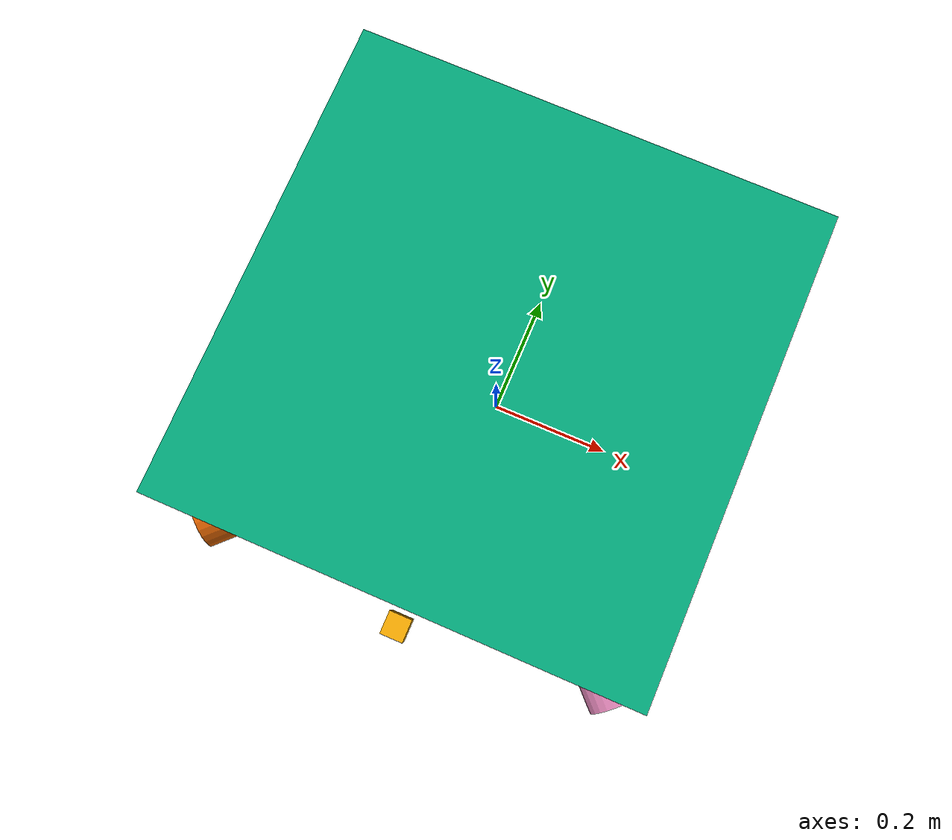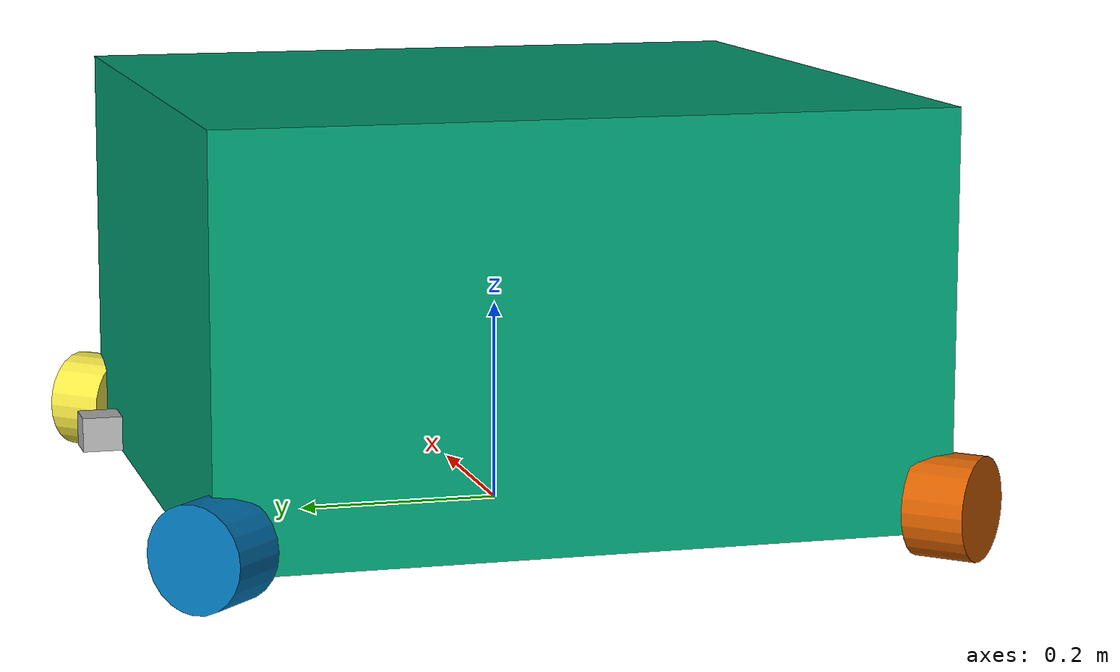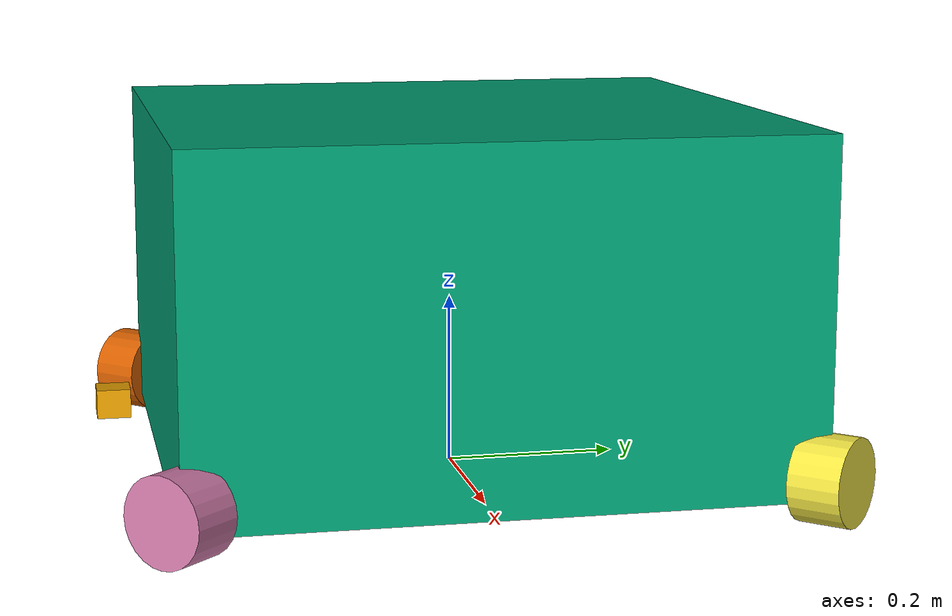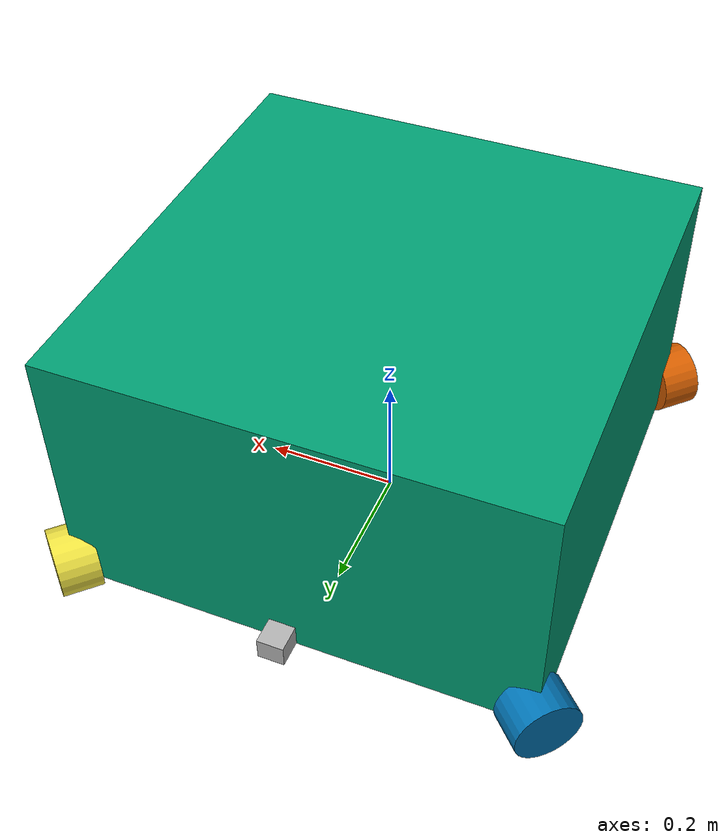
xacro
<?xml version="1.0"?>
<robot name="exr1" xmlns:xacro="http://ros.org/wiki/xacro">
  <xacro:property name="wheel_separation" value="0.35" />
  <xacro:property name="wheel_radius" value="0.05" />
  <xacro:property name="body_height" value="0.025" />

  <xacro:include filename="$(find exr1_description)/urdf/utils.xacro" />
  <xacro:include filename="$(find exr1_description)/urdf/wheel.urdf.xacro" />
  <xacro:include filename="$(find exr1_description)/urdf/ld06_lidar.urdf.xacro" />

  <link name="base_footprint" />

  <joint name="base_link_joint" type="fixed">
    <parent link="base_footprint" />
    <child link="base_link" />
    <origin xyz="0 0 0" rpy="0 0 0" />
  </joint>
  <link name="base_link" />

  <joint name="body_joint" type="fixed">
    <parent link="base_link" />
    <child link="body_link" />
    <origin xyz="0 0 ${0.2 + body_height}" rpy="0 0 0" />
  </joint>
  <link name="body_link">
    <xacro:inertial_box mass="28" x="0.7" y="0.7" z="0.4">
      <origin xyz="0 0 0" />
    </xacro:inertial_box>
    <collision>
      <geometry>
        <box size="0.7 0.7 0.4" />
      </geometry>
    </collision>
    <visual>
      <geometry>
        <box size="0.7 0.7 0.4" />
      </geometry>
    </visual>
  </link>

  <xacro:wheel name="front_left" radius="${wheel_radius}">
    <origin xyz="${wheel_separation} ${wheel_separation} ${wheel_radius}"
      rpy="${-pi/2} 0 ${1*pi/4+pi/2}" />
  </xacro:wheel>

  <xacro:wheel name="rear_left" radius="${wheel_radius}">
    <origin xyz="${-wheel_separation} ${wheel_separation} ${wheel_radius}"
      rpy="${-pi/2} 0 ${3*pi/4+pi/2}" />
  </xacro:wheel>

  <xacro:wheel name="rear_right" radius="${wheel_radius}">
    <origin xyz="${-wheel_separation} ${-wheel_separation} ${wheel_radius}"
      rpy="${-pi/2} 0 ${5*pi/4+pi/2}" />
  </xacro:wheel>

  <xacro:wheel name="front_right" radius="${wheel_radius}">
    <origin xyz="${wheel_separation} ${-wheel_separation} ${wheel_radius}"
      rpy="${-pi/2} 0 ${7*pi/4+pi/2}" />
  </xacro:wheel>

  <xacro:ld06_lidar name="left_lidar" topic="scan_left">
    <origin xyz="0 0.4 0.1" rpy="0 0 0" />
  </xacro:ld06_lidar>

  <xacro:ld06_lidar name="right_lidar" topic="scan_right">
    <origin xyz="0 -0.4 0.1" rpy="0 0 ${pi}" />
  </xacro:ld06_lidar>

  <gazebo>
    <plugin filename="libexr1_sim_plugin.so" name="exr1_gz::Exr1System">
      <max_wheel_torque>5.0</max_wheel_torque>
      <wheel_radius>${wheel_radius}</wheel_radius>
      <wheel_separation>${wheel_separation}</wheel_separation>
      <linear_damping>50</linear_damping>
      <angular_damping>5</angular_damping>
      <base_link>base_footprint</base_link>
    </plugin>
  </gazebo>
</robot>

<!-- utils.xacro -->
<robot xmlns:xacro="http://www.ros.org/wiki/xacro">
  <!-- From https://github.com/joshnewans/urdf_example/blob/main/description/example_include.xacro -->

  <!-- This file is not a robot in and of itself, it just contains some useful tags that could be
  included in any robot -->

  <!-- Specify some standard inertial calculations
  https://en.wikipedia.org/wiki/List_of_moments_of_inertia -->
  <!-- These make use of xacro's mathematical functionality -->

  <xacro:macro name="inertial_sphere" params="mass radius *origin">
    <inertial>
      <xacro:insert_block name="origin" />
      <mass value="${mass}" />
      <inertia ixx="${(2/5) * mass * (radius*radius)}" ixy="0.0" ixz="0.0"
        iyy="${(2/5) * mass * (radius*radius)}" iyz="0.0"
        izz="${(2/5) * mass * (radius*radius)}" />
    </inertial>
  </xacro:macro>

  <xacro:macro name="inertial_box" params="mass x y z *origin">
    <inertial>
      <xacro:insert_block name="origin" />
      <mass value="${mass}" />
      <inertia ixx="${(1/12) * mass * (y*y+z*z)}" ixy="0.0" ixz="0.0"
        iyy="${(1/12) * mass * (x*x+z*z)}" iyz="0.0"
        izz="${(1/12) * mass * (x*x+y*y)}" />
    </inertial>
  </xacro:macro>

  <xacro:macro name="inertial_cylinder" params="mass length radius">
    <inertial>
      <xacro:insert_block name="origin" />
      <mass value="${mass}" />
      <inertia ixx="${(1/12) * mass * (3*radius*radius + length*length)}" ixy="0.0" ixz="0.0"
        iyy="${(1/12) * mass * (3*radius*radius + length*length)}" iyz="0.0"
        izz="${(1/2) * mass * (radius*radius)}" />
    </inertial>
  </xacro:macro>
</robot>

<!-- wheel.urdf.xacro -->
<robot xmlns:xacro="http://ros.org/wiki/xacro" xmlns:gz="http://gazebosim.org/schema">
  <xacro:macro name="wheel" params="name radius parent_link:=base_link *origin">
    <xacro:property name="mass" value="0.5" />
    <xacro:property name="width" value="0.06" />

    <xacro:property name="wheel_link_name" value="${name}_wheel" />
    <xacro:property name="wheel_joint_name" value="${wheel_link_name}_joint" />

    <joint name="${wheel_joint_name}" type="fixed">
      <parent link="${parent_link}" />
      <child link="${wheel_link_name}" />
      <xacro:insert_block name="origin" />
    </joint>

    <link name="${wheel_link_name}">
      <visual>
        <geometry>
          <cylinder length="${width}" radius="${radius}" />
        </geometry>
      </visual>
      <collision>
        <geometry>
          <cylinder length="${width}" radius="${radius}" />
        </geometry>
      </collision>
      <xacro:inertial_cylinder mass="${mass}" radius="${radius}"
        length="${width}" />
    </link>

    <gazebo reference="${wheel_link_name}">
      <collision>
        <surface>
          <friction>
            <ode>
              <mu>0.0</mu>
              <mu2>0.0</mu2>
            </ode>
          </friction>
        </surface>
      </collision>
    </gazebo>

  </xacro:macro>
</robot>

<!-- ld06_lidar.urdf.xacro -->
<robot xmlns:xacro="http://ros.org/wiki/xacro" xmlns:gz="http://gazebosim.org/schema">
  <xacro:macro name="ld06_lidar" params="name topic parent_link:=base_link *origin">
    <xacro:property name="joint_name" value="${name}_joint" />
    <xacro:property name="link_name" value="${name}_link" />
    <xacro:property name="width" value="0.03859" />
    <xacro:property name="height" value="0.03330" />
    <xacro:property name="mass" value="0.042" />
    <xacro:property name="z_offset" value="${-(height/2 - 0.0076)}" />

    <joint name="${joint_name}" type="fixed">
      <parent link="${parent_link}" />
      <child link="${link_name}" />
      <xacro:insert_block name="origin" />
    </joint>

    <link name="${link_name}">
      <visual>
        <origin xyz="0 0 ${z_offset}" />
        <geometry>
          <box size="${width} ${width} ${height}" />
        </geometry>
      </visual>
      <collision>
        <origin xyz="0 0 ${z_offset}" />
        <geometry>
          <box size="${width} ${width} ${height}" />
        </geometry>
      </collision>
      <xacro:inertial_box mass="${mass}" x="${width}" y="${width}" z="${height}">
        <origin xyz="0 0 ${z_offset}" />
      </xacro:inertial_box>
    </link>

    <gazebo reference="${link_name}">
      <sensor name="${name}" type="gpu_lidar">
        <gz_frame_id>${link_name}</gz_frame_id>
        <topic>${topic}</topic>
        <update_rate>10</update_rate>
        <lidar>
          <scan>
            <horizontal>
              <samples>450</samples>
              <resolution>1</resolution>
              <min_angle>0</min_angle>
              <max_angle>${2*pi}</max_angle>
            </horizontal>
            <vertical>
              <samples>1</samples>
              <resolution>0.1</resolution>
              <min_angle>0</min_angle>
              <max_angle>0</max_angle>
            </vertical>
          </scan>
          <range>
            <min>0.02</min>
            <max>12</max>
            <resolution>0.015</resolution>
          </range>
          <noise>
            <type>gaussian</type>
            <mean>0.0</mean>
            <stddev>0.01</stddev>
          </noise>
        </lidar>
        <always_on>1</always_on>
        <visualize>true</visualize>
      </sensor>
    </gazebo>

  </xacro:macro>
</robot>
